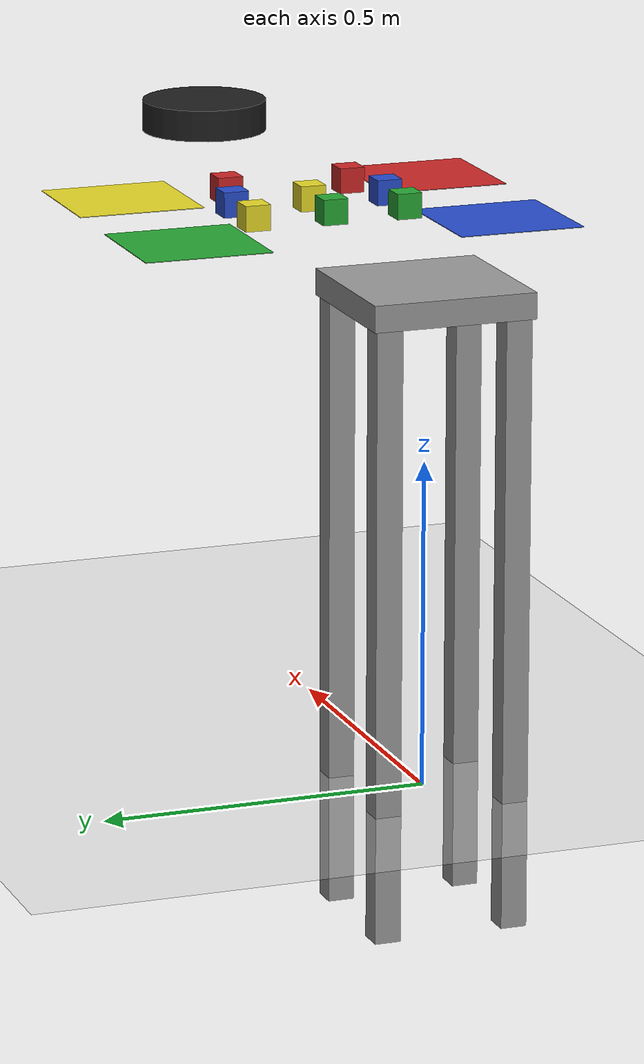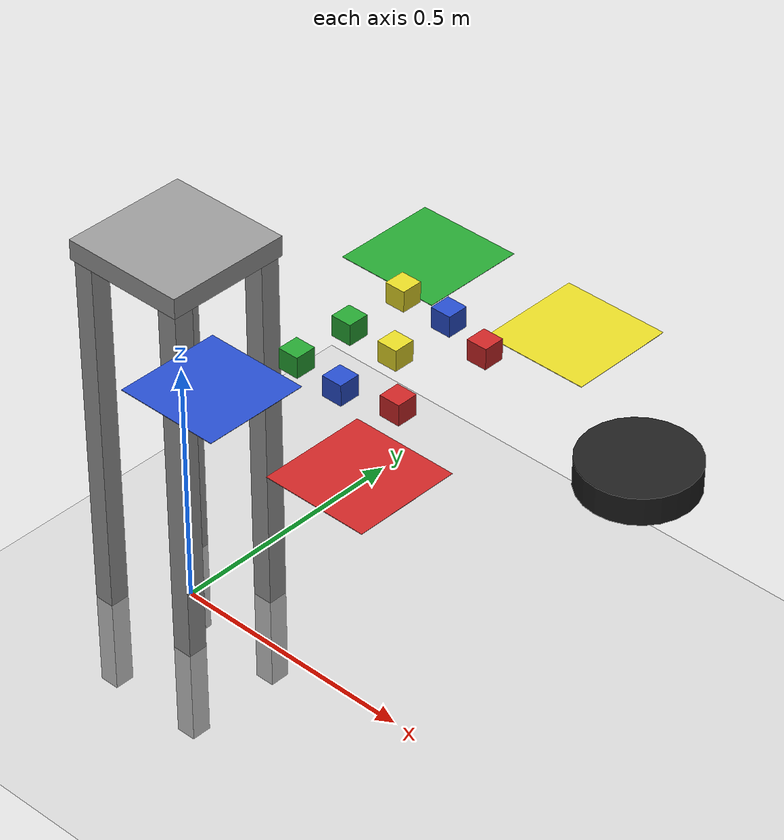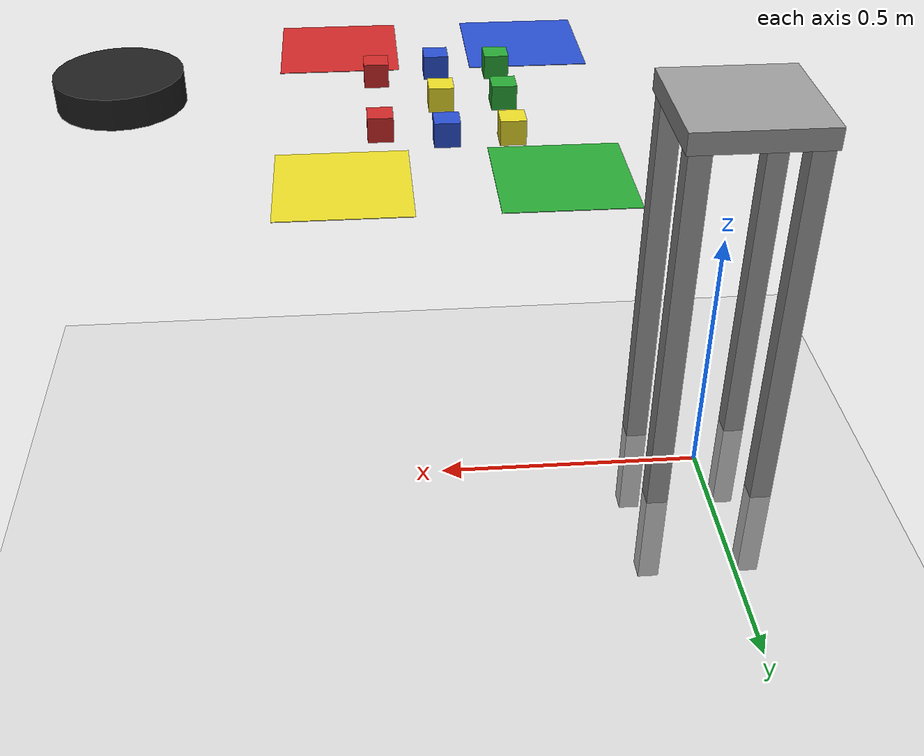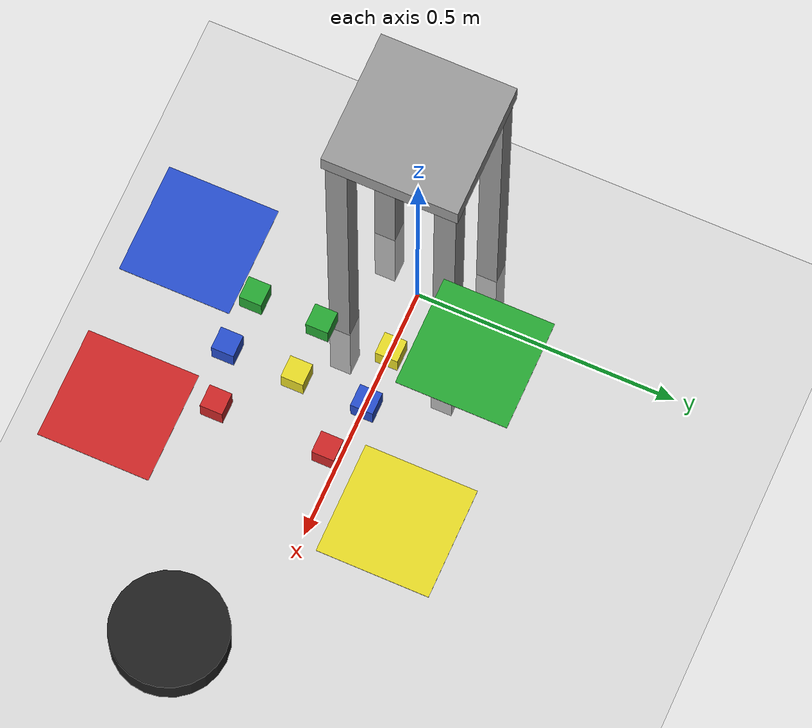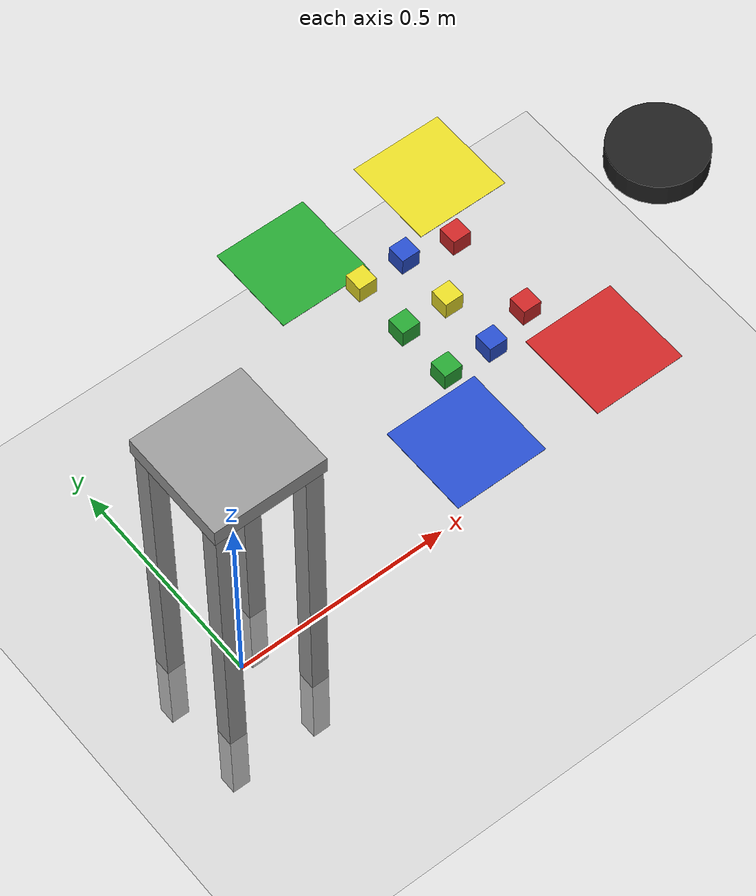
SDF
<sdf version="1.6">
 <world name="default">
  <gravity>0 0 -9.81</gravity>
  <physics name="default_physics" default="0" type="ode">
   <max_step_size>0.001</max_step_size>
   <real_time_factor>1</real_time_factor>
   <real_time_update_rate>1000</real_time_update_rate>
  </physics>
  <scene><ambient>0.4 0.4 0.4 1</ambient><background>0.7 0.7 0.7 1</background><shadows>1</shadows></scene>
  <include><uri>model://sun</uri></include>
  <include><uri>model://ground_plane</uri></include>
  <model name="xarm_base">
   <static>true</static>
   <link name="top_plate">
    <pose>0 0 0.755 0 0 0</pose>
    <collision name="top_plate_collision">
     <geometry><box><size>0.25 0.25 0.04</size></box></geometry>
     <surface><contact><collide_bitmask>0x01</collide_bitmask></contact></surface>
    </collision>
    <visual name="top_plate_visual">
     <geometry><box><size>0.25 0.25 0.04</size></box></geometry>
     <material>
      <script><uri>file://media/materials/scripts/gazebo.material</uri><name>Gazebo/Grey</name></script>
     </material>
    </visual>
   </link>
   <link name="leg1">
    <pose>0.1 0.1 0.285 0 0 0</pose>
    <collision name="leg1_collision"><geometry><box><size>0.04 0.04 0.965</size></box></geometry></collision>
    <visual name="leg1_visual">
     <geometry><box><size>0.04 0.04 0.965</size></box></geometry>
     <material>
      <script><uri>file://media/materials/scripts/gazebo.material</uri><name>Gazebo/Grey</name></script>
     </material>
    </visual>
   </link>
   <link name="leg2">
    <pose>-0.1 0.1 0.285 0 0 0</pose>
    <collision name="leg2_collision"><geometry><box><size>0.04 0.04 0.965</size></box></geometry></collision>
    <visual name="leg2_visual">
     <geometry><box><size>0.04 0.04 0.965</size></box></geometry>
     <material>
      <script><uri>file://media/materials/scripts/gazebo.material</uri><name>Gazebo/Grey</name></script>
     </material>
    </visual>
   </link>
   <link name="leg3">
    <pose>0.1 -0.1 0.285 0 0 0</pose>
    <collision name="leg3_collision"><geometry><box><size>0.04 0.04 0.965</size></box></geometry></collision>
    <visual name="leg3_visual">
     <geometry><box><size>0.04 0.04 0.965</size></box></geometry>
     <material>
      <script><uri>file://media/materials/scripts/gazebo.material</uri><name>Gazebo/Grey</name></script>
     </material>
    </visual>
   </link>
   <link name="leg4">
    <pose>-0.1 -0.1 0.285 0 0 0</pose>
    <collision name="leg4_collision"><geometry><box><size>0.04 0.04 0.965</size></box></geometry></collision>
    <visual name="leg4_visual">
     <geometry><box><size>0.04 0.04 0.965</size></box></geometry>
     <material>
      <script><uri>file://media/materials/scripts/gazebo.material</uri><name>Gazebo/Grey</name></script>
     </material>
    </visual>
   </link>
  </model>
  <model name="box1">
   <pose>0.6 -0.1 0.775 0 0 0</pose>
   <link name="link">
    <pose>0 0 0.02 0 0 0</pose>
    <inertial>
     <mass>0.0565</mass>
     <inertia>
      <ixx>2.3541666666666672e-05</ixx>
      <ixy>0</ixy>
      <ixz>0</ixz>
      <iyy>2.3541666666666672e-05</iyy>
      <iyz>0</iyz>
      <izz>2.3541666666666672e-05</izz>
     </inertia>
    </inertial>
    <collision name="collision">
     <geometry><box><size>0.04 0.04 0.04</size></box></geometry>
     <surface>
      <contact>
       <poissons_ratio>0.347</poissons_ratio>
       <elastic_modulus>8.8e+09</elastic_modulus>
       <ode><kp>100000</kp><kd>1</kd><max_vel>1.0</max_vel><min_depth>0.001</min_depth></ode>
      </contact>
      <friction>
       <torsional>
        <coefficient>1.0</coefficient>
        <use_patch_radius>0</use_patch_radius>
        <surface_radius>0.05</surface_radius>
       </torsional>
      </friction>
     </surface>
    </collision>
    <visual name="visual">
     <geometry><box><size>0.04 0.04 0.04</size></box></geometry>
     <material>
      <script><uri>file://media/materials/scripts/gazebo.material</uri><name>Gazebo/Red</name></script>
     </material>
    </visual>
   </link>
  </model>
  <model name="box2">
   <pose>0.6 0.1 0.775 0 0 0</pose>
   <link name="link">
    <pose>0 0 0.020 0 0 0</pose>
    <inertial>
     <mass>0.0565</mass>
     <inertia>
      <ixx>2.3541666666666672e-05</ixx>
      <ixy>0</ixy>
      <ixz>0</ixz>
      <iyy>2.3541666666666672e-05</iyy>
      <iyz>0</iyz>
      <izz>2.3541666666666672e-05</izz>
     </inertia>
    </inertial>
    <collision name="collision">
     <geometry><box><size>0.04 0.04 0.04</size></box></geometry>
     <surface>
      <contact>
       <poissons_ratio>0.347</poissons_ratio>
       <elastic_modulus>8.8e+09</elastic_modulus>
       <ode><kp>100000</kp><kd>1</kd><max_vel>1.0</max_vel><min_depth>0.001</min_depth></ode>
      </contact>
      <friction>
       <torsional>
        <coefficient>1.0</coefficient>
        <use_patch_radius>0</use_patch_radius>
        <surface_radius>0.05</surface_radius>
       </torsional>
      </friction>
     </surface>
    </collision>
    <visual name="visual">
     <geometry><box><size>0.04 0.04 0.04</size></box></geometry>
     <material>
      <script><uri>file://media/materials/scripts/gazebo.material</uri><name>Gazebo/Red</name></script>
     </material>
    </visual>
   </link>
  </model>
  <model name="box3">
   <pose>0.5 0.125 0.775 0 0 0</pose>
   <link name="link">
    <pose>0 0 0.020 0 0 0</pose>
    <inertial>
     <mass>0.0565</mass>
     <inertia>
      <ixx>2.3541666666666672e-05</ixx>
      <ixy>0</ixy>
      <ixz>0</ixz>
      <iyy>2.3541666666666672e-05</iyy>
      <iyz>0</iyz>
      <izz>2.3541666666666672e-05</izz>
     </inertia>
    </inertial>
    <collision name="collision">
     <geometry><box><size>0.04 0.04 0.04</size></box></geometry>
     <surface>
      <contact>
       <poissons_ratio>0.347</poissons_ratio>
       <elastic_modulus>8.8e+09</elastic_modulus>
       <ode><kp>100000</kp><kd>1</kd><max_vel>1.0</max_vel><min_depth>0.001</min_depth></ode>
      </contact>
      <friction>
       <torsional>
        <coefficient>1.0</coefficient>
        <use_patch_radius>0</use_patch_radius>
        <surface_radius>0.05</surface_radius>
       </torsional>
      </friction>
     </surface>
    </collision>
    <visual name="visual">
     <geometry><box><size>0.04 0.04 0.04</size></box></geometry>
     <material>
      <script><uri>file://media/materials/scripts/gazebo.material</uri><name>Gazebo/Blue</name></script>
     </material>
    </visual>
   </link>
  </model>
  <model name="box4">
   <pose>0.5 -0.125 0.775 0 0 0</pose>
   <link name="link">
    <pose>0 0 0.020 0 0 0</pose>
    <inertial>
     <mass>0.0565</mass>
     <inertia>
      <ixx>2.3541666666666672e-05</ixx>
      <ixy>0</ixy>
      <ixz>0</ixz>
      <iyy>2.3541666666666672e-05</iyy>
      <iyz>0</iyz>
      <izz>2.3541666666666672e-05</izz>
     </inertia>
    </inertial>
    <collision name="collision">
     <geometry><box><size>0.04 0.04 0.04</size></box></geometry>
     <surface>
      <contact>
       <poissons_ratio>0.347</poissons_ratio>
       <elastic_modulus>8.8e+09</elastic_modulus>
       <ode><kp>100000</kp><kd>1</kd><max_vel>1.0</max_vel><min_depth>0.001</min_depth></ode>
      </contact>
      <friction>
       <torsional>
        <coefficient>1.0</coefficient>
        <use_patch_radius>0</use_patch_radius>
        <surface_radius>0.05</surface_radius>
       </torsional>
      </friction>
     </surface>
    </collision>
    <visual name="visual">
     <geometry><box><size>0.04 0.04 0.04</size></box></geometry>
     <material>
      <script><uri>file://media/materials/scripts/gazebo.material</uri><name>Gazebo/Blue</name></script>
     </material>
    </visual>
   </link>
  </model>
  <model name="box5">
   <pose>0.5 0 0.775 0 0 0</pose>
   <link name="link">
    <pose>0 0 0.020 0 0 0</pose>
    <inertial>
     <mass>0.0565</mass>
     <inertia>
      <ixx>2.3541666666666672e-05</ixx>
      <ixy>0</ixy>
      <ixz>0</ixz>
      <iyy>2.3541666666666672e-05</iyy>
      <iyz>0</iyz>
      <izz>2.3541666666666672e-05</izz>
     </inertia>
    </inertial>
    <collision name="collision">
     <geometry><box><size>0.04 0.04 0.04</size></box></geometry>
     <surface>
      <contact>
       <poissons_ratio>0.347</poissons_ratio>
       <elastic_modulus>8.8e+09</elastic_modulus>
       <ode><kp>100000</kp><kd>1</kd><max_vel>1.0</max_vel><min_depth>0.001</min_depth></ode>
      </contact>
      <friction>
       <torsional>
        <coefficient>1.0</coefficient>
        <use_patch_radius>0</use_patch_radius>
        <surface_radius>0.05</surface_radius>
       </torsional>
      </friction>
     </surface>
    </collision>
    <visual name="visual">
     <geometry><box><size>0.04 0.04 0.04</size></box></geometry>
     <material>
      <script><uri>file://media/materials/scripts/gazebo.material</uri><name>Gazebo/Yellow</name></script>
     </material>
    </visual>
   </link>
  </model>
  <model name="box6">
   <pose>0.4 0.125 0.775 0 0 0</pose>
   <link name="link">
    <pose>0 0 0.020 0 0 0</pose>
    <inertial>
     <mass>0.0565</mass>
     <inertia>
      <ixx>2.3541666666666672e-05</ixx>
      <ixy>0</ixy>
      <ixz>0</ixz>
      <iyy>2.3541666666666672e-05</iyy>
      <iyz>0</iyz>
      <izz>2.3541666666666672e-05</izz>
     </inertia>
    </inertial>
    <collision name="collision">
     <geometry><box><size>0.04 0.04 0.04</size></box></geometry>
     <surface>
      <contact>
       <poissons_ratio>0.347</poissons_ratio>
       <elastic_modulus>8.8e+09</elastic_modulus>
       <ode><kp>100000</kp><kd>1</kd><max_vel>1.0</max_vel><min_depth>0.001</min_depth></ode>
      </contact>
      <friction>
       <torsional>
        <coefficient>1.0</coefficient>
        <use_patch_radius>0</use_patch_radius>
        <surface_radius>0.05</surface_radius>
       </torsional>
      </friction>
     </surface>
    </collision>
    <visual name="visual">
     <geometry><box><size>0.04 0.04 0.04</size></box></geometry>
     <material>
      <script><uri>file://media/materials/scripts/gazebo.material</uri><name>Gazebo/Yellow</name></script>
     </material>
    </visual>
   </link>
  </model>
  <model name="box7">
   <pose>0.4 -0.120 0.775 0 0 0</pose>
   <link name="link">
    <pose>0 0 0.020 0 0 0</pose>
    <inertial>
     <mass>0.0565</mass>
     <inertia>
      <ixx>2.3541666666666672e-05</ixx>
      <ixy>0</ixy>
      <ixz>0</ixz>
      <iyy>2.3541666666666672e-05</iyy>
      <iyz>0</iyz>
      <izz>2.3541666666666672e-05</izz>
     </inertia>
    </inertial>
    <collision name="collision">
     <geometry><box><size>0.04 0.04 0.04</size></box></geometry>
     <surface>
      <contact>
       <poissons_ratio>0.347</poissons_ratio>
       <elastic_modulus>8.8e+09</elastic_modulus>
       <ode><kp>100000</kp><kd>1</kd><max_vel>1.0</max_vel><min_depth>0.001</min_depth></ode>
      </contact>
      <friction>
       <torsional>
        <coefficient>1.0</coefficient>
        <use_patch_radius>0</use_patch_radius>
        <surface_radius>0.05</surface_radius>
       </torsional>
      </friction>
     </surface>
    </collision>
    <visual name="visual">
     <geometry><box><size>0.04 0.04 0.04</size></box></geometry>
     <material>
      <script><uri>file://media/materials/scripts/gazebo.material</uri><name>Gazebo/Green</name></script>
     </material>
    </visual>
   </link>
  </model>
  <model name="box8">
   <pose>0.4 0 0.775 0 0 0</pose>
   <link name="link">
    <pose>0 0 0.020 0 0 0</pose>
    <inertial>
     <mass>0.0565</mass>
     <inertia>
      <ixx>2.3541666666666672e-05</ixx>
      <ixy>0</ixy>
      <ixz>0</ixz>
      <iyy>2.3541666666666672e-05</iyy>
      <iyz>0</iyz>
      <izz>2.3541666666666672e-05</izz>
     </inertia>
    </inertial>
    <collision name="collision">
     <geometry><box><size>0.04 0.04 0.04</size></box></geometry>
     <surface>
      <contact>
       <poissons_ratio>0.347</poissons_ratio>
       <elastic_modulus>8.8e+09</elastic_modulus>
       <ode><kp>100000</kp><kd>1</kd><max_vel>1.0</max_vel><min_depth>0.001</min_depth></ode>
      </contact>
      <friction>
       <torsional>
        <coefficient>1.0</coefficient>
        <use_patch_radius>0</use_patch_radius>
        <surface_radius>0.05</surface_radius>
       </torsional>
      </friction>
     </surface>
    </collision>
    <visual name="visual">
     <geometry><box><size>0.04 0.04 0.04</size></box></geometry>
     <material>
      <script><uri>file://media/materials/scripts/gazebo.material</uri><name>Gazebo/Green</name></script>
     </material>
    </visual>
   </link>
  </model>
  <model name="zone_red">
   <static>true</static>
   <link name="link">
    <pose>0.660 -0.250 0.775 0 0 0</pose>
    <collision name="collision">
     <geometry><box><size>0.20 0.20 0.001</size></box></geometry>
     <surface><contact><collide_bitmask>0x00</collide_bitmask></contact></surface>
    </collision>
    <visual name="visual">
     <geometry><box><size>0.20 0.20 0.001</size></box></geometry>
     <material>
      <script><uri>file://media/materials/scripts/gazebo.material</uri><name>Gazebo/Red</name></script>
     </material>
    </visual>
   </link>
  </model>
  <model name="zone_blue">
   <static>true</static>
   <link name="link">
    <pose>0.340 -0.250 0.775 0 0 0</pose>
    <collision name="collision">
     <geometry><box><size>0.20 0.20 0.001</size></box></geometry>
     <surface><contact><collide_bitmask>0x00</collide_bitmask></contact></surface>
    </collision>
    <visual name="visual">
     <geometry><box><size>0.20 0.20 0.001</size></box></geometry>
     <material>
      <script><uri>file://media/materials/scripts/gazebo.material</uri><name>Gazebo/Blue</name></script>
     </material>
    </visual>
   </link>
  </model>
  <model name="zone_yellow">
   <static>true</static>
   <link name="link">
    <pose>0.660 0.250 0.775 0 0 0</pose>
    <collision name="collision">
     <geometry><box><size>0.20 0.20 0.001</size></box></geometry>
     <surface><contact><collide_bitmask>0x00</collide_bitmask></contact></surface>
    </collision>
    <visual name="visual">
     <geometry><box><size>0.20 0.20 0.001</size></box></geometry>
     <material>
      <script><uri>file://media/materials/scripts/gazebo.material</uri><name>Gazebo/Yellow</name></script>
     </material>
    </visual>
   </link>
  </model>
  <model name="zone_green">
   <static>true</static>
   <link name="link">
    <pose>0.340 0.250 0.775	0 0 0</pose>
    <collision name="collision">
     <geometry><box><size>0.20 0.20 0.001</size></box></geometry>
     <surface><contact><collide_bitmask>0x00</collide_bitmask></contact></surface>
    </collision>
    <visual name="visual">
     <geometry><box><size>0.20 0.20 0.001</size></box></geometry>
     <material>
      <script><uri>file://media/materials/scripts/gazebo.material</uri><name>Gazebo/Green</name></script>
     </material>
    </visual>
   </link>
  </model>
  <model name="xarm_base2">
   <static>true</static>
   <link name="base_link">
    <pose>1 0 0.825 0 0 0</pose>
    <collision name="collision">
     <geometry><cylinder><radius>0.10</radius><length>0.05</length></cylinder></geometry>
    </collision>
    <visual name="visual">
     <geometry><cylinder><radius>0.10</radius><length>0.05</length></cylinder></geometry>
     <material>
      <script><uri>file://media/materials/scripts/gazebo.material</uri><name>Gazebo/Black</name></script>
     </material>
    </visual>
   </link>
  </model>
 </world>
</sdf>
